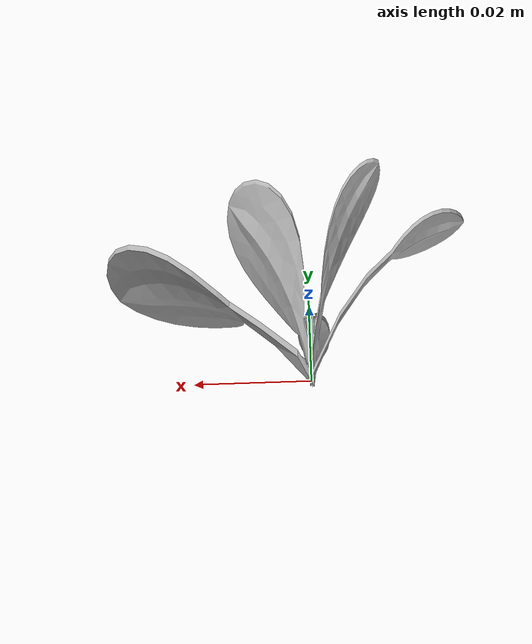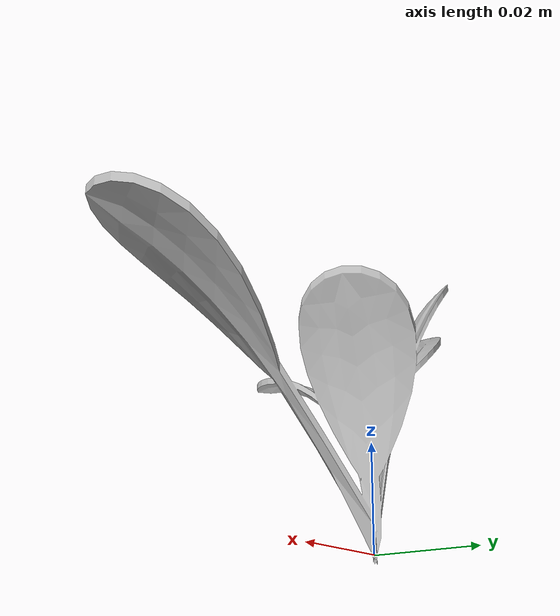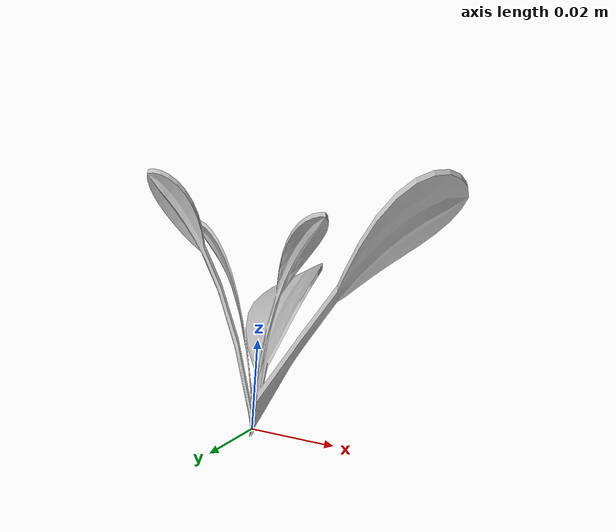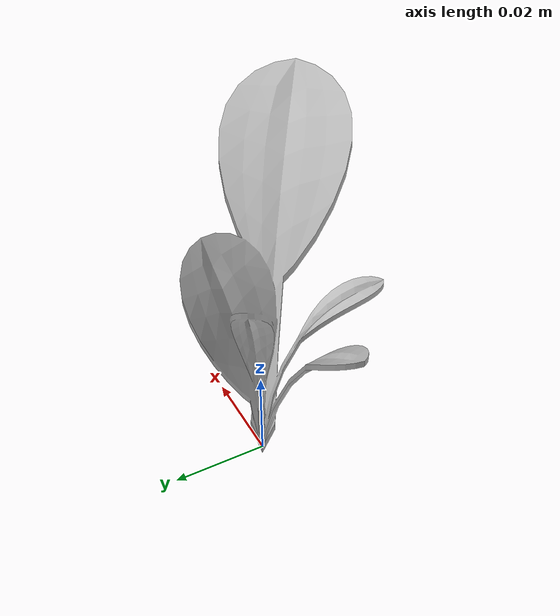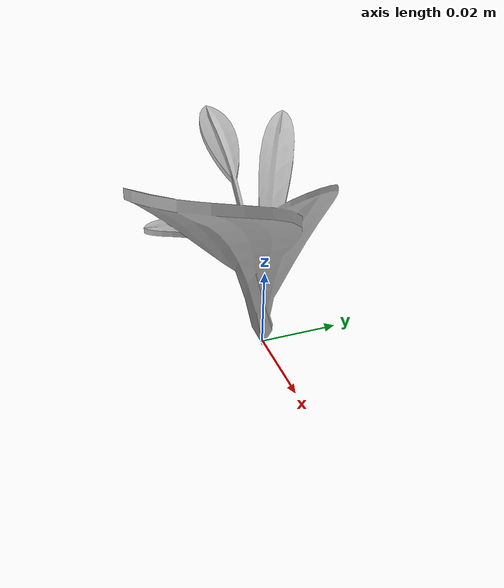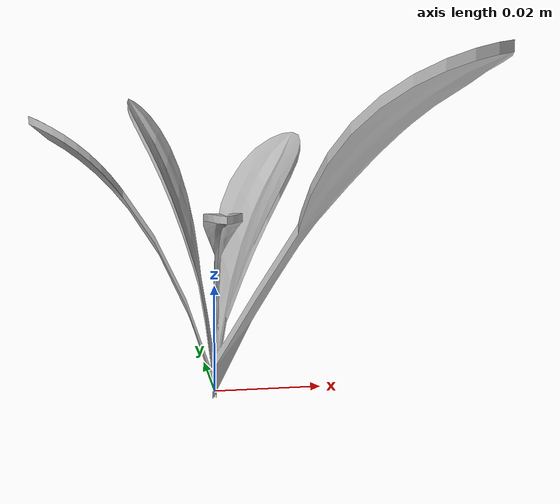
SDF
<sdf version="1.6">
  <model name="sugar_beet_31">
    <static>true</static>
    <link name="body">
      <visual name="visual">
        <geometry>
          <mesh>
            <uri>file:///sugar_beet_31/media/sugar_beet.dae</uri>
          </mesh>
        </geometry>
      </visual>
    </link>
  </model>
</sdf>
